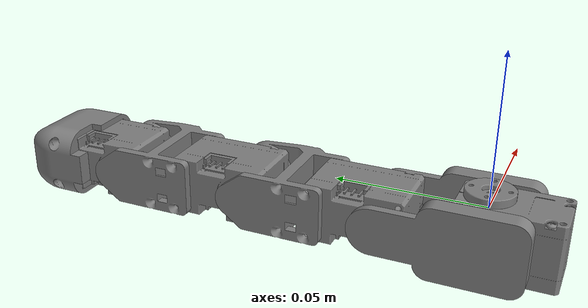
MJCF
<mujoco model="URDF_finger_4_motors">
  <compiler angle="radian" meshdir="/home/lasa/research/projects/crawling_hand/crawling_hand/descriptions/v2/meshes/"/>
  <statistic meansize="0.0499306" extent="0.213027" center="0.000494844 0.0747348 -0.00799952"/>
  <asset>
    <mesh name="base_link" file="base_link.stl" scale="0.001 0.001 0.001"/>
    <mesh name="MCP_spread_motor_1" file="MCP_spread_motor_1.stl" scale="0.001 0.001 0.001"/>
    <mesh name="MCP_motor_1" file="MCP_motor_1.stl" scale="0.001 0.001 0.001"/>
    <mesh name="proximal_1" file="proximal_1.stl" scale="0.001 0.001 0.001"/>
    <mesh name="PIP_motor_1" file="PIP_motor_1.stl" scale="0.001 0.001 0.001"/>
    <mesh name="middle_1" file="middle_1.stl" scale="0.001 0.001 0.001"/>
    <mesh name="DIP_motor_1" file="DIP_motor_1.stl" scale="0.001 0.001 0.001"/>
    <mesh name="distal_1" file="distal_1.stl" scale="0.001 0.001 0.001"/>
    <mesh name="metacarpal_1" file="metacarpal_1.stl" scale="0.001 0.001 0.001"/>
  </asset>
  <worldbody>
    <geom type="mesh" mesh="base_link"/>
    <body name="MCP_spread_motor_1">
      <inertial pos="0.00780713 0.0116002 -0.00421738" quat="0.556955 0.285031 -0.717518 0.306149" mass="0.218111" diaginertia="7.16804e-05 5.53793e-05 3.8057e-05"/>
      <joint name="MCP_spread" pos="0 0 0" axis="0 0 1"/>
      <geom type="mesh" mesh="MCP_spread_motor_1"/>
      <geom pos="0 0.009 0" type="mesh" mesh="metacarpal_1"/>
      <body name="MCP_motor_1" pos="-0.0135 0.0325 -0.008">
        <inertial pos="0.0133661 0.0158676 3.0672e-06" quat="0.523581 0.475248 -0.523529 0.475309" mass="0.163332" diaginertia="5.41695e-05 4.73107e-05 1.68589e-05"/>
        <joint name="MCP" pos="0 0 0" axis="1 0 0"/>
        <geom pos="0.0135 -0.0235 0.008" type="mesh" mesh="MCP_motor_1"/>
        <geom pos="0.0135 -0.0235 0.008" type="mesh" mesh="proximal_1"/>
        <body name="PIP_motor_1" pos="0.001 0.049 0">
          <inertial pos="0.0123661 0.0158676 3.0672e-06" quat="0.523581 0.475248 -0.523529 0.475309" mass="0.163332" diaginertia="5.41695e-05 4.73107e-05 1.68589e-05"/>
          <joint name="PIP" pos="0 0 0" axis="1 0 0"/>
          <geom pos="0.0125 -0.0725 0.008" type="mesh" mesh="PIP_motor_1"/>
          <geom pos="0.0125 -0.0725 0.008" type="mesh" mesh="middle_1"/>
          <body name="DIP_motor_1" pos="0 0.049 0">
            <inertial pos="0.0118444 0.0123626 3.07129e-06" quat="0.503638 0.496337 -0.503565 0.496408" mass="0.163525" diaginertia="3.3711e-05 2.87101e-05 1.70008e-05"/>
            <joint name="DIP" pos="0 0 0" axis="1 0 0"/>
            <geom pos="0.0125 -0.1215 0.008" type="mesh" mesh="DIP_motor_1"/>
            <geom pos="0.0125 -0.1215 0.008" type="mesh" mesh="distal_1"/>
          </body>
        </body>
      </body>
    </body>
  </worldbody>
</mujoco>
